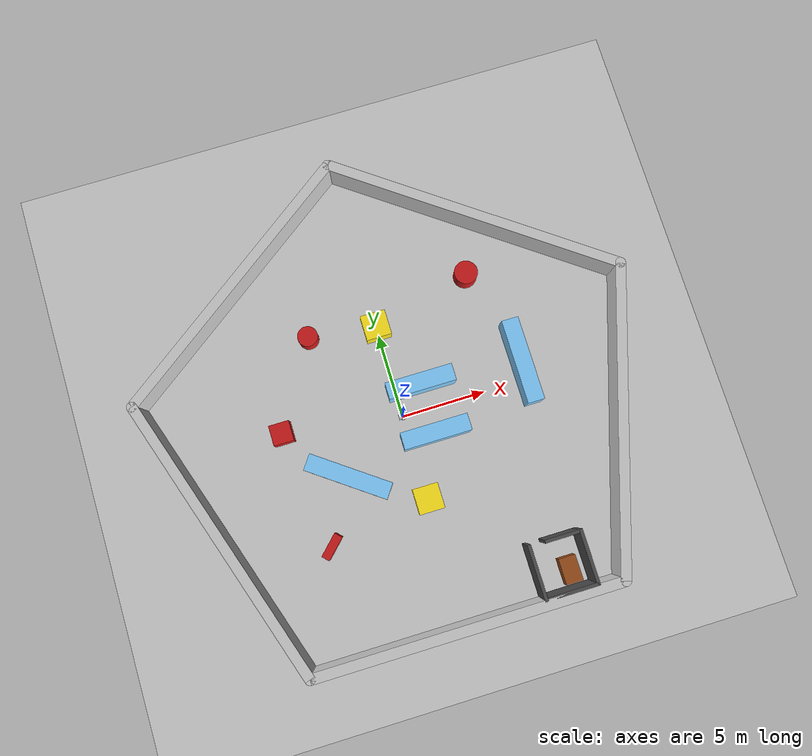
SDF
<?xml version="1.0" ?>
<sdf version="1.6">
  <world name="warehouse_world">
    <include><uri>model://sun</uri></include>
    <include><uri>model://ground_plane</uri></include>
    <model name="pentagon_warehouse"><static>true</static><pose>0 0 0 0 0 0</pose>
    <link name="wall_0"><pose>-7.281152949374525 10.02164727970446 1 0 0 -2.5132741228718345</pose><collision name="col"><geometry><box><size>18.0 0.6 2</size></box></geometry></collision><visual name="vis"><geometry><box><size>18.0 0.6 2</size></box></geometry><material><ambient>0.8 0.8 0.8 1</ambient></material></visual></link>
    <link name="corner_0"><pose>9.375721106763908e-16 15.311714550336719 1 0 0 0</pose><collision name="col"><geometry><cylinder><radius>0.3</radius><length>2</length></cylinder></geometry></collision><visual name="vis"><geometry><cylinder><radius>0.3</radius><length>2</length></cylinder></geometry><material><ambient>0.8 0.8 0.8 1</ambient></material></visual></link>

    <link name="wall_1"><pose>-11.781152949374526 -3.8279286375841783 1 0 0 -1.2566370614359175</pose><collision name="col"><geometry><box><size>18.0 0.6 2</size></box></geometry></collision><visual name="vis"><geometry><box><size>18.0 0.6 2</size></box></geometry><material><ambient>0.8 0.8 0.8 1</ambient></material></visual></link>
    <link name="corner_1"><pose>-14.562305898749052 4.7315800090722036 1 0 0 0</pose><collision name="col"><geometry><cylinder><radius>0.3</radius><length>2</length></cylinder></geometry></collision><visual name="vis"><geometry><cylinder><radius>0.3</radius><length>2</length></cylinder></geometry><material><ambient>0.8 0.8 0.8 1</ambient></material></visual></link>

    <link name="wall_2"><pose>-2.6645352591003757e-15 -12.387437284240562 1 0 0 -1.9737298215558337e-16</pose><collision name="col"><geometry><box><size>18.0 0.6 2</size></box></geometry></collision><visual name="vis"><geometry><box><size>18.0 0.6 2</size></box></geometry><material><ambient>0.8 0.8 0.8 1</ambient></material></visual></link>
    <link name="corner_2"><pose>-9.000000000000002 -12.38743728424056 1 0 0 0</pose><collision name="col"><geometry><cylinder><radius>0.3</radius><length>2</length></cylinder></geometry></collision><visual name="vis"><geometry><cylinder><radius>0.3</radius><length>2</length></cylinder></geometry><material><ambient>0.8 0.8 0.8 1</ambient></material></visual></link>

    <link name="wall_3"><pose>11.781152949374526 -3.827928637584183 1 0 0 1.256637061435917</pose><collision name="col"><geometry><box><size>18.0 0.6 2</size></box></geometry></collision><visual name="vis"><geometry><box><size>18.0 0.6 2</size></box></geometry><material><ambient>0.8 0.8 0.8 1</ambient></material></visual></link>
    <link name="corner_3"><pose>8.999999999999996 -12.387437284240564 1 0 0 0</pose><collision name="col"><geometry><cylinder><radius>0.3</radius><length>2</length></cylinder></geometry></collision><visual name="vis"><geometry><cylinder><radius>0.3</radius><length>2</length></cylinder></geometry><material><ambient>0.8 0.8 0.8 1</ambient></material></visual></link>

    <link name="wall_4"><pose>7.281152949374528 10.021647279704458 1 0 0 2.5132741228718345</pose><collision name="col"><geometry><box><size>18.0 0.6 2</size></box></geometry></collision><visual name="vis"><geometry><box><size>18.0 0.6 2</size></box></geometry><material><ambient>0.8 0.8 0.8 1</ambient></material></visual></link>
    <link name="corner_4"><pose>14.562305898749054 4.731580009072198 1 0 0 0</pose><collision name="col"><geometry><cylinder><radius>0.3</radius><length>2</length></cylinder></geometry></collision><visual name="vis"><geometry><cylinder><radius>0.3</radius><length>2</length></cylinder></geometry><material><ambient>0.8 0.8 0.8 1</ambient></material></visual></link>
    </model>

    <!-- Security Office -->
    <model name="security_office"><static>true</static><pose>6.0 -10.6 0 0 0 0</pose>
      <link name="sec_wall_left"><pose>-1.5 0 1 0 0 0</pose><collision name="col"><geometry><box><size>0.2 3.2 2</size></box></geometry></collision><visual name="vis"><geometry><box><size>0.2 3.2 2</size></box></geometry><material><ambient>0.3 0.3 0.3 1</ambient></material></visual></link>
      <link name="sec_wall_right"><pose>1.5 0 1 0 0 0</pose><collision name="col"><geometry><box><size>0.2 3.2 2</size></box></geometry></collision><visual name="vis"><geometry><box><size>0.2 3.2 2</size></box></geometry><material><ambient>0.3 0.3 0.3 1</ambient></material></visual></link>
      <link name="sec_wall_back"><pose>0 -1.5 1 0 0 0</pose><collision name="col"><geometry><box><size>3.2 0.2 2</size></box></geometry></collision><visual name="vis"><geometry><box><size>3.2 0.2 2</size></box></geometry><material><ambient>0.3 0.3 0.3 1</ambient></material></visual></link>
      <link name="sec_wall_front"><pose>0.4 1.5 1 0 0 0</pose><collision name="col"><geometry><box><size>2.0 0.2 2</size></box></geometry></collision><visual name="vis"><geometry><box><size>2.0 0.2 2</size></box></geometry><material><ambient>0.3 0.3 0.3 1</ambient></material></visual></link>
      <link name="table"><pose>0.5 -0.5 0.4 0 0 0</pose><collision name="col"><geometry><box><size>1.0 1.5 0.8</size></box></geometry></collision><visual name="vis"><geometry><box><size>1.0 1.5 0.8</size></box></geometry><material><ambient>0.6 0.3 0.1 1</ambient></material></visual></link>
    </model>

    <!-- Obstacles -->
    <model name="red_obstacle_1"><static>true</static><pose>-7.0 1.0 0.5 0 0 0</pose><link name="link"><collision name="col"><geometry><box><size>1.2 1.2 1.0</size></box></geometry></collision><visual name="vis"><geometry><box><size>1.2 1.2 1.0</size></box></geometry><material><ambient>0.8 0.1 0.1 1</ambient></material></visual></link></model>
    <model name="red_obstacle_2"><static>true</static><pose>-4.0 6.0 0.5 0 0 0</pose><link name="link"><collision name="col"><geometry><cylinder><radius>0.6</radius><length>1.0</length></cylinder></geometry></collision><visual name="vis"><geometry><cylinder><radius>0.6</radius><length>1.0</length></cylinder></geometry><material><ambient>0.8 0.1 0.1 1</ambient></material></visual></link></model>
    <model name="red_obstacle_3"><static>true</static><pose>-6.0 -6.0 0.5 0 0 0.785</pose><link name="link"><collision name="col"><geometry><box><size>1.5 0.5 1.0</size></box></geometry></collision><visual name="vis"><geometry><box><size>1.5 0.5 1.0</size></box></geometry><material><ambient>0.8 0.1 0.1 1</ambient></material></visual></link></model>
    <model name="red_obstacle_4"><static>true</static><pose>6.0 7.0 0.5 0 0 0</pose><link name="link"><collision name="col"><geometry><cylinder><radius>0.7</radius><length>1.0</length></cylinder></geometry></collision><visual name="vis"><geometry><cylinder><radius>0.7</radius><length>1.0</length></cylinder></geometry><material><ambient>0.8 0.1 0.1 1</ambient></material></visual></link></model>
    <model name="yellow_obstacle_top"><static>true</static><pose>0 5.5 0.5 0 0 0</pose><link name="link"><collision name="col"><geometry><box><size>1.5 1.5 1.0</size></box></geometry></collision><visual name="vis"><geometry><box><size>1.5 1.5 1.0</size></box></geometry><material><ambient>1.0 0.9 0.1 1</ambient></material></visual></link></model>
    <model name="yellow_obstacle_bottom"><static>true</static><pose>0 -5.0 0.5 0 0 0</pose><link name="link"><collision name="col"><geometry><box><size>1.5 1.5 1.0</size></box></geometry></collision><visual name="vis"><geometry><box><size>1.5 1.5 1.0</size></box></geometry><material><ambient>1.0 0.9 0.1 1</ambient></material></visual></link></model>
    <model name="blue_shelf_center_top"><static>true</static><pose>1.5 1.5 0.75 0 0 0</pose><link name="link"><collision name="col"><geometry><box><size>4.0 1.0 1.5</size></box></geometry></collision><visual name="vis"><geometry><box><size>4.0 1.0 1.5</size></box></geometry><material><ambient>0.5 0.8 1.0 1</ambient></material></visual></link></model>
    <model name="blue_shelf_center_bottom"><static>true</static><pose>1.5 -1.5 0.75 0 0 0</pose><link name="link"><collision name="col"><geometry><box><size>4.0 1.0 1.5</size></box></geometry></collision><visual name="vis"><geometry><box><size>4.0 1.0 1.5</size></box></geometry><material><ambient>0.5 0.8 1.0 1</ambient></material></visual></link></model>
    <model name="blue_shelf_right_vertical"><static>true</static><pose>7.5 1.0 0.75 0 0 0</pose><link name="link"><collision name="col"><geometry><box><size>1.0 5.0 1.5</size></box></geometry></collision><visual name="vis"><geometry><box><size>1.0 5.0 1.5</size></box></geometry><material><ambient>0.5 0.8 1.0 1</ambient></material></visual></link></model>
    <model name="blue_shelf_left_angled"><static>true</static><pose>-4.0 -2.5 0.75 0 0 -0.628</pose><link name="link"><collision name="col"><geometry><box><size>5.0 1.0 1.5</size></box></geometry></collision><visual name="vis"><geometry><box><size>5.0 1.0 1.5</size></box></geometry><material><ambient>0.5 0.8 1.0 1</ambient></material></visual></link></model>

    <!-- Robot with IMU Added -->
    <model name="warehouse_robot">
      <pose>0 0 0.15 0 0 0</pose>
      <link name="base_link">
        <inertial><mass>10.0</mass><inertia><ixx>0.1</ixx><iyy>0.2</iyy><izz>0.2</izz></inertia></inertial>
        <collision name="collision"><geometry><box><size>0.5 0.3 0.15</size></box></geometry></collision>
        <visual name="visual"><geometry><box><size>0.5 0.3 0.15</size></box></geometry></visual>
        <sensor name="imu_sensor" type="imu">
          <always_on>true</always_on><update_rate>50</update_rate>
          <plugin name="imu_plugin" filename="libgazebo_ros_imu_sensor.so">
            <ros><remapping>~/out:=imu</remapping></ros>
          </plugin>
        </sensor>
      </link>
      <link name="left_wheel"><pose>0.0 0.18 -0.05 1.5707 0 0</pose><inertial><mass>1.0</mass><inertia><ixx>0.005</ixx><iyy>0.005</iyy><izz>0.005</izz></inertia></inertial><collision name="collision"><geometry><cylinder><radius>0.1</radius><length>0.05</length></cylinder></geometry></collision><visual name="visual"><geometry><cylinder><radius>0.1</radius><length>0.05</length></cylinder></geometry></visual></link>
      <link name="right_wheel"><pose>0.0 -0.18 -0.05 1.5707 0 0</pose><inertial><mass>1.0</mass><inertia><ixx>0.005</ixx><iyy>0.005</iyy><izz>0.005</izz></inertia></inertial><collision name="collision"><geometry><cylinder><radius>0.1</radius><length>0.05</length></cylinder></geometry></collision><visual name="visual"><geometry><cylinder><radius>0.1</radius><length>0.05</length></cylinder></geometry></visual></link>
      <link name="front_caster"><pose>0.2 0 -0.1 0 0 0</pose><inertial><mass>0.2</mass><inertia><ixx>0.0001</ixx><iyy>0.0001</iyy><izz>0.0001</izz></inertia></inertial><collision name="collision"><geometry><sphere><radius>0.05</radius></sphere></geometry></collision></link>
      <link name="rear_caster"><pose>-0.2 0 -0.1 0 0 0</pose><inertial><mass>0.2</mass><inertia><ixx>0.0001</ixx><iyy>0.0001</iyy><izz>0.0001</izz></inertia></inertial><collision name="collision"><geometry><sphere><radius>0.05</radius></sphere></geometry></collision></link>
      <link name="lidar_link"><pose>0.2 0 0.15 0 0 0</pose><sensor name="lidar" type="ray"><always_on>true</always_on><visualize>true</visualize><update_rate>10</update_rate><ray><scan><horizontal><samples>360</samples><resolution>1</resolution><min_angle>-3.14159</min_angle><max_angle>3.14159</max_angle></horizontal></scan><range><min>0.15</min><max>12.0</max><resolution>0.01</resolution></range></ray><plugin name="laser_controller" filename="libgazebo_ros_ray_sensor.so"><ros><remapping>~/out:=scan</remapping></ros><output_type>sensor_msgs/LaserScan</output_type></plugin></sensor></link>
      <joint name="left_wheel_joint" type="revolute"><parent>base_link</parent><child>left_wheel</child><axis><xyz>0 0 1</xyz></axis></joint>
      <joint name="right_wheel_joint" type="revolute"><parent>base_link</parent><child>right_wheel</child><axis><xyz>0 0 1</xyz></axis></joint>
      <joint name="front_caster_joint" type="fixed"><parent>base_link</parent><child>front_caster</child></joint>
      <joint name="rear_caster_joint" type="fixed"><parent>base_link</parent><child>rear_caster</child></joint>
      <joint name="lidar_joint" type="fixed"><parent>base_link</parent><child>lidar_link</child></joint>
      <plugin name="differential_drive_controller" filename="libgazebo_ros_diff_drive.so"><update_rate>50</update_rate><left_joint>left_wheel_joint</left_joint><right_joint>right_wheel_joint</right_joint><wheel_separation>0.36</wheel_separation><wheel_diameter>0.2</wheel_diameter><command_topic>cmd_vel</command_topic><odometry_topic>odom</odometry_topic><odometry_frame>odom</odometry_frame><robot_base_frame>base_link</robot_base_frame><publish_odom>true</publish_odom><publish_odom_tf>true</publish_odom_tf></plugin>
    </model>
  </world>
</sdf>
